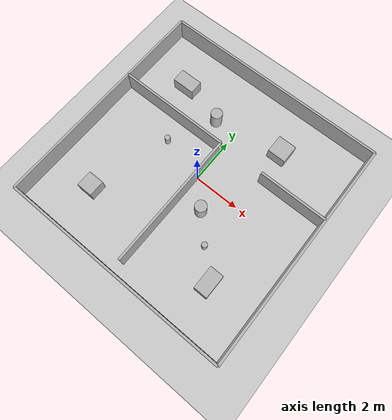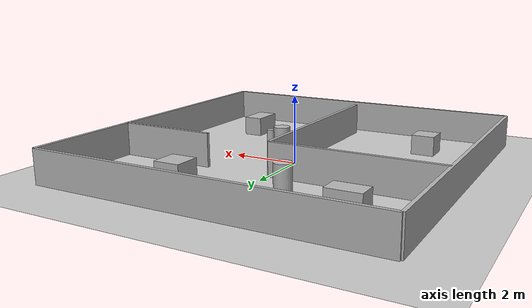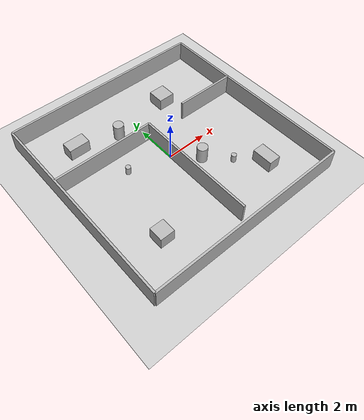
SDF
<?xml version="1.0" ?>
<sdf version="1.6">

  <world name="office_world">

    <include>
      <uri>model://ground_plane</uri>
    </include>

    <include>
      <uri>model://sun</uri>
    </include>

    <!-- ================= OUTER WALLS ================= -->

    <model name="wall_north">
      <static>true</static>
      <pose>0 5 0.5 0 0 0</pose>
      <link name="link">
        <collision name="c">
          <geometry><box><size>10 0.1 1</size></box></geometry>
        </collision>
        <visual name="v">
          <geometry><box><size>10 0.1 1</size></box></geometry>
        </visual>
      </link>
    </model>

    <model name="wall_south">
      <static>true</static>
      <pose>0 -5 0.5 0 0 0</pose>
      <link name="link">
        <collision name="c">
          <geometry><box><size>10 0.1 1</size></box></geometry>
        </collision>
        <visual name="v">
          <geometry><box><size>10 0.1 1</size></box></geometry>
        </visual>
      </link>
    </model>

    <model name="wall_east">
      <static>true</static>
      <pose>5 0 0.5 0 0 1.5708</pose>
      <link name="link">
        <collision name="c">
          <geometry><box><size>10 0.1 1</size></box></geometry>
        </collision>
        <visual name="v">
          <geometry><box><size>10 0.1 1</size></box></geometry>
        </visual>
      </link>
    </model>

    <model name="wall_west">
      <static>true</static>
      <pose>-5 0 0.5 0 0 1.5708</pose>
      <link name="link">
        <collision name="c">
          <geometry><box><size>10 0.1 1</size></box></geometry>
        </collision>
        <visual name="v">
          <geometry><box><size>10 0.1 1</size></box></geometry>
        </visual>
      </link>
    </model>

    <!-- ================= ROOM DIVIDERS ================= -->

    <!-- Horizontal divider with doorway -->
    <model name="divider_top_left">
      <static>true</static>
      <pose>-2.5 1.5 0.5 0 0 0</pose>
      <link name="link">
        <collision name="c">
          <geometry><box><size>5 0.1 1</size></box></geometry>
        </collision>
        <visual name="v">
          <geometry><box><size>5 0.1 1</size></box></geometry>
        </visual>
      </link>
    </model>

    <model name="divider_top_right">
      <static>true</static>
      <pose>3.5 1.5 0.5 0 0 0</pose>
      <link name="link">
        <collision name="c">
          <geometry><box><size>3 0.1 1</size></box></geometry>
        </collision>
        <visual name="v">
          <geometry><box><size>3 0.1 1</size></box></geometry>
        </visual>
      </link>
    </model>

    <!-- Vertical divider -->
    <model name="divider_vertical">
      <static>true</static>
      <pose>0 -1.5 0.5 0 0 1.5708</pose>
      <link name="link">
        <collision name="c">
          <geometry><box><size>6 0.1 1</size></box></geometry>
        </collision>
        <visual name="v">
          <geometry><box><size>6 0.1 1</size></box></geometry>
        </visual>
      </link>
    </model>

    <!-- ================= BOXES ================= -->

    <model name="box1">
      <static>true</static>
      <pose>2 3 0.3 0 0 0</pose>
      <link name="link">
        <collision name="c">
          <geometry><box><size>0.8 0.8 0.6</size></box></geometry>
        </collision>
        <visual name="v">
          <geometry><box><size>0.8 0.8 0.6</size></box></geometry>
        </visual>
      </link>
    </model>

    <model name="box2">
      <static>true</static>
      <pose>-3 3 0.3 0 0 0</pose>
      <link name="link">
        <collision name="c">
          <geometry><box><size>1.0 0.6 0.6</size></box></geometry>
        </collision>
        <visual name="v">
          <geometry><box><size>1.0 0.6 0.6</size></box></geometry>
        </visual>
      </link>
    </model>

    <model name="box3">
      <static>true</static>
      <pose>-3 -3 0.3 0 0 0</pose>
      <link name="link">
        <collision name="c">
          <geometry><box><size>0.7 0.7 0.6</size></box></geometry>
        </collision>
        <visual name="v">
          <geometry><box><size>0.7 0.7 0.6</size></box></geometry>
        </visual>
      </link>
    </model>

    <model name="box4">
      <static>true</static>
      <pose>3 -3 0.3 0 0 0</pose>
      <link name="link">
        <collision name="c">
          <geometry><box><size>0.6 1.0 0.6</size></box></geometry>
        </collision>
        <visual name="v">
          <geometry><box><size>0.6 1.0 0.6</size></box></geometry>
        </visual>
      </link>
    </model>

    <!-- ================= CYLINDERS ================= -->

    <model name="cylinder1">
      <static>true</static>
      <pose>1 -1 0.4 0 0 0</pose>
      <link name="link">
        <collision name="c">
          <geometry>
            <cylinder>
              <radius>0.25</radius>
              <length>0.8</length>
            </cylinder>
          </geometry>
        </collision>
        <visual name="v">
          <geometry>
            <cylinder>
              <radius>0.25</radius>
              <length>0.8</length>
            </cylinder>
          </geometry>
        </visual>
      </link>
    </model>

    <model name="cylinder2">
      <static>true</static>
      <pose>-1 2.5 0.4 0 0 0</pose>
      <link name="link">
        <collision name="c">
          <geometry>
            <cylinder>
              <radius>0.25</radius>
              <length>0.8</length>
            </cylinder>
          </geometry>
        </collision>
        <visual name="v">
          <geometry>
            <cylinder>
              <radius>0.25</radius>
              <length>0.8</length>
            </cylinder>
          </geometry>
        </visual>
      </link>
    </model>

    <!-- ================= TRAFFIC CONES ================= -->

    <model name="cone1">
      <static>true</static>
      <pose>2 -2 0.2 0 0 0</pose>
      <link name="link">
        <collision name="c">
          <geometry>
            <cylinder>
              <radius>0.12</radius>
              <length>0.4</length>
            </cylinder>
          </geometry>
        </collision>
        <visual name="v">
          <geometry>
            <cylinder>
              <radius>0.12</radius>
              <length>0.4</length>
            </cylinder>
          </geometry>
        </visual>
      </link>
    </model>

    <model name="cone2">
      <static>true</static>
      <pose>-2 0.5 0.2 0 0 0</pose>
      <link name="link">
        <collision name="c">
          <geometry>
            <cylinder>
              <radius>0.12</radius>
              <length>0.4</length>
            </cylinder>
          </geometry>
        </collision>
        <visual name="v">
          <geometry>
            <cylinder>
              <radius>0.12</radius>
              <length>0.4</length>
            </cylinder>
          </geometry>
        </visual>
      </link>
    </model>

  </world>

</sdf>
